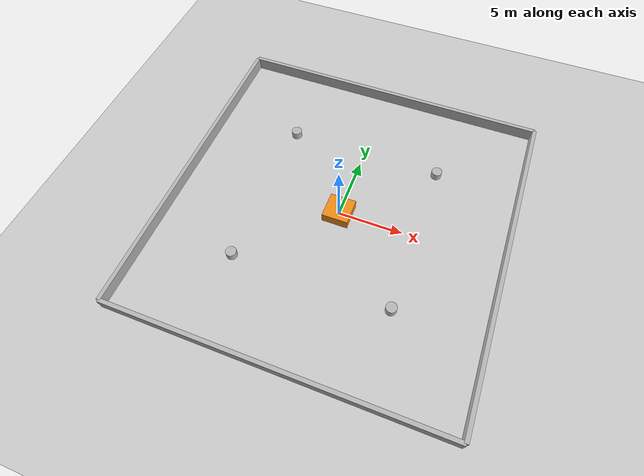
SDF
<?xml version="1.0" ?>
<sdf version="1.7">
  <world name="swarm_crossing_paths">
    <include>
      <uri>model://sun</uri>
    </include>

    <!-- 地面 -->
    <model name="ground_plane">
      <static>true</static>
      <link name="link">
        <collision name="collision">
          <geometry>
            <plane>
              <normal>0 0 1</normal>
            </plane>
          </geometry>
        </collision>
        <visual name="visual">
          <geometry>
            <plane>
              <normal>0 0 1</normal>
              <size>25 25</size>
            </plane>
          </geometry>
          <material>
            <script>
              <uri>file://media/materials/scripts/gazebo.material</uri>
              <name>Gazebo/Grey</name>
            </script>
          </material>
        </visual>
      </link>
    </model>

    <!-- 外围边界墙 -->
    <!-- 上墙 -->
    <model name="wall_top">
      <static>true</static>
      <pose>0 12.5 0.5 0 0 0</pose>
      <link name="link">
        <collision>
          <geometry>
            <box><size>25 0.3 1</size></box>
          </geometry>
        </collision>
        <visual>
          <geometry>
            <box><size>25 0.3 1</size></box>
          </geometry>
        </visual>
      </link>
    </model>

    <!-- 下墙 -->
    <model name="wall_bottom">
      <static>true</static>
      <pose>0 -12.5 0.5 0 0 0</pose>
      <link name="link">
        <collision>
          <geometry>
            <box><size>25 0.3 1</size></box>
          </geometry>
        </collision>
        <visual>
          <geometry>
            <box><size>25 0.3 1</size></box>
          </geometry>
        </visual>
      </link>
    </model>

    <!-- 左墙 -->
    <model name="wall_left">
      <static>true</static>
      <pose>-12.5 0 0.5 0 0 0</pose>
      <link name="link">
        <collision>
          <geometry>
            <box><size>0.3 25 1</size></box>
          </geometry>
        </collision>
        <visual>
          <geometry>
            <box><size>0.3 25 1</size></box>
          </geometry>
        </visual>
      </link>
    </model>

    <!-- 右墙 -->
    <model name="wall_right">
      <static>true</static>
      <pose>12.5 0 0.5 0 0 0</pose>
      <link name="link">
        <collision>
          <geometry>
            <box><size>0.3 25 1</size></box>
          </geometry>
        </collision>
        <visual>
          <geometry>
            <box><size>0.3 25 1</size></box>
          </geometry>
        </visual>
      </link>
    </model>

    <!-- 中心障碍物 - 强制交叉 -->
    <model name="central_obstacle">
      <static>true</static>
      <pose>0 0 0.4 0 0 0</pose>
      <link name="link">
        <collision>
          <geometry>
            <box><size>2 2 0.8</size></box>
          </geometry>
        </collision>
        <visual>
          <geometry>
            <box><size>2 2 0.8</size></box>
          </geometry>
          <material>
            <script>
              <uri>file://media/materials/scripts/gazebo.material</uri>
              <name>Gazebo/Orange</name>
            </script>
          </material>
        </visual>
      </link>
    </model>

    <!-- 额外障碍物 - 增加复杂度 -->
    <model name="obstacle_nw">
      <static>true</static>
      <pose>-6 6 0.3 0 0 0</pose>
      <link name="link">
        <collision>
          <geometry>
            <cylinder><radius>0.4</radius><length>0.6</length></cylinder>
          </geometry>
        </collision>
        <visual>
          <geometry>
            <cylinder><radius>0.4</radius><length>0.6</length></cylinder>
          </geometry>
        </visual>
      </link>
    </model>

    <model name="obstacle_ne">
      <static>true</static>
      <pose>6 6 0.3 0 0 0</pose>
      <link name="link">
        <collision>
          <geometry>
            <cylinder><radius>0.4</radius><length>0.6</length></cylinder>
          </geometry>
        </collision>
        <visual>
          <geometry>
            <cylinder><radius>0.4</radius><length>0.6</length></cylinder>
          </geometry>
        </visual>
      </link>
    </model>

    <model name="obstacle_sw">
      <static>true</static>
      <pose>-6 -6 0.3 0 0 0</pose>
      <link name="link">
        <collision>
          <geometry>
            <cylinder><radius>0.4</radius><length>0.6</length></cylinder>
          </geometry>
        </collision>
        <visual>
          <geometry>
            <cylinder><radius>0.4</radius><length>0.6</length></cylinder>
          </geometry>
        </visual>
      </link>
    </model>

    <model name="obstacle_se">
      <static>true</static>
      <pose>6 -6 0.3 0 0 0</pose>
      <link name="link">
        <collision>
          <geometry>
            <cylinder><radius>0.4</radius><length>0.6</length></cylinder>
          </geometry>
        </collision>
        <visual>
          <geometry>
            <cylinder><radius>0.4</radius><length>0.6</length></cylinder>
          </geometry>
        </visual>
      </link>
    </model>

    <!-- 物理参数 -->
    <gravity>0 0 -9.81</gravity>
    <magnetic_field>0 0 0.5</magnetic_field>

    <!-- 光照 -->
    <scene>
      <ambient>0.4 0.4 0.4 1</ambient>
      <background>0.6 0.7 0.8 1</background>
    </scene>
  </world>
</sdf>
